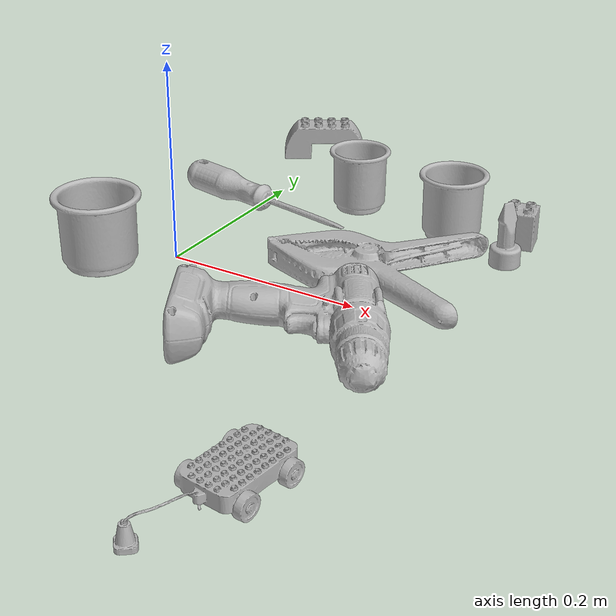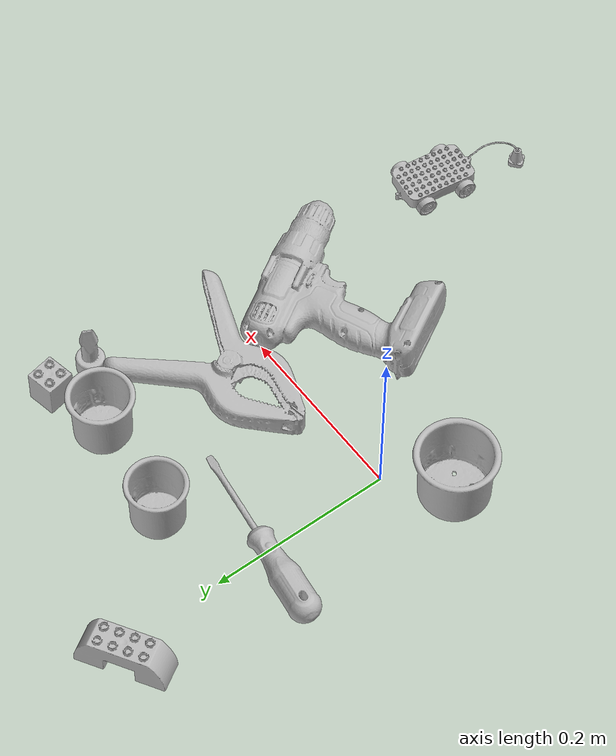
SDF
<sdf version="1.4">
  <world name="default">
    <light name="light1" type="point">
      <pose>0 0 1 0 0 0</pose>
      <diffuse>3 3 3 1</diffuse>
      <specular>3 3 3 1</specular>
    </light>
    <light name="light2" type="point">
      <pose>0 0.5 2 0 0 0</pose>
      <diffuse>1 1 1 1</diffuse>
      <specular>1 1 1 1</specular>
    </light>
    <light name="light3" type="point">
      <pose>0 0.5 2 0 0 0</pose>
      <diffuse>3 3 3 1</diffuse>
      <specular>3 3 3 1</specular>
    </light>
    <scene>
      <ambient>0.7 0.7 0.7</ambient>
    </scene>
    <model name="cup1">
      <link name="link_cup1">
        <collision name="default">
          <geometry>
            <mesh>
              <uri>model://d_cups/collision_meshes/collision.obj</uri>
              <scale>1.0 1.0 1.0</scale>
            </mesh>
          </geometry>
          <surface>
            <friction>
              <ode>
                <mu>0.5</mu>
                <mu2>0.5</mu2>
              </ode>
            </friction>
          <contact>
        <ode>
            <max_vel>0</max_vel>
            <min_depth>0.0001</min_depth>
            <kp>1e8</kp>
        </ode>
    </contact></surface>
        </collision>
        <visual name="default">
          <geometry>
            <mesh>
              <uri>model://d_cups/visual_meshes/visual.dae</uri>
              <scale>1.0 1.0 1.0</scale>
            </mesh>
          </geometry>
        </visual>
        <inertial>
          <mass>0.04943045228719711</mass>
          <pose>0.0008068052702583373 0.0019117395859211683 -0.0022666507866233587 0.2401104468273406 -0.24710716259907536 0.594298245500967</pose>
          <inertia>
            <ixx>4.1384912e-05</ixx>
            <iyy>4.1265153e-05</iyy>
            <izz>3.7460377e-05</izz>
            <ixy>0</ixy>
            <ixz>0</ixz>
            <iyz>0</iyz>
          </inertia>
        </inertial>
      </link>
      <pose>0.21129286289215088 0.18980543315410614 0.0346590131521225 1.4203080811360996e-07 5.8476342502225955e-08 0.5835024676876582</pose>
    </model>
    <model name="cup2">
      <link name="link_cup2">
        <collision name="default">
          <geometry>
            <mesh>
              <uri>model://c_cups/collision_meshes/collision.obj</uri>
              <scale>1.0 1.0 1.0</scale>
            </mesh>
          </geometry>
          <surface>
            <friction>
              <ode>
                <mu>0.5</mu>
                <mu2>0.5</mu2>
              </ode>
            </friction>
          <contact>
        <ode>
            <max_vel>0</max_vel>
            <min_depth>0.0001</min_depth>
            <kp>1e8</kp>
        </ode>
    </contact></surface>
        </collision>
        <visual name="default">
          <geometry>
            <mesh>
              <uri>model://c_cups/visual_meshes/visual.dae</uri>
              <scale>1.0 1.0 1.0</scale>
            </mesh>
          </geometry>
        </visual>
        <inertial>
          <mass>0.02161477506160736</mass>
          <pose>0.0007237254758365452 0.002015391131862998 -0.0012750980677083135 0.3021577101392444 0.013461522825774588 -0.08771822086046323</pose>
          <inertia>
            <ixx>1.607462e-05</ixx>
            <iyy>1.5790554e-05</iyy>
            <izz>1.4215883e-05</izz>
            <ixy>0</ixy>
            <ixz>0</ixz>
            <iyz>0</iyz>
          </inertia>
        </inertial>
      </link>
      <pose>0.09539611637592316 0.20388291776180267 0.03345899656414986 8.115835683773673e-07 9.494097895569186e-07 0.4854974228494874</pose>
    </model>
    <model name="cup3">
      <link name="link_cup3">
        <collision name="default">
          <geometry>
            <mesh>
              <uri>model://g_cups/collision_meshes/collision.obj</uri>
              <scale>1.0 1.0 1.0</scale>
            </mesh>
          </geometry>
          <surface>
            <friction>
              <ode>
                <mu>0.5</mu>
                <mu2>0.5</mu2>
              </ode>
            </friction>
          <contact>
        <ode>
            <max_vel>0</max_vel>
            <min_depth>0.0001</min_depth>
            <kp>1e8</kp>
        </ode>
    </contact></surface>
        </collision>
        <visual name="default">
          <geometry>
            <mesh>
              <uri>model://g_cups/visual_meshes/visual.dae</uri>
              <scale>1.0 1.0 1.0</scale>
            </mesh>
          </geometry>
        </visual>
        <inertial>
          <mass>0.04413851350545883</mass>
          <pose>-0.0007946275873109698 -4.206433004583232e-05 -0.002132937777787447 -0.2138199678327952 -0.31410615416341514 0.3111935262320568</pose>
          <inertia>
            <ixx>5.151955e-05</ixx>
            <iyy>5.1344283e-05</iyy>
            <izz>5.3365377e-05</izz>
            <ixy>0</ixy>
            <ixz>0</ixz>
            <iyz>0</iyz>
          </inertia>
        </inertial>
      </link>
      <pose>-0.0565386600792408 -0.048159968107938766 0.03720299154520035 -2.2745694703038818e-06 2.429124264391848e-06 0.13774075037844105</pose>
    </model>
    <model name="toy1">
      <link name="link_toy1">
        <collision name="default">
          <geometry>
            <mesh>
              <uri>model://e_lego_duplo/collision_meshes/collision.obj</uri>
              <scale>1.0 1.0 1.0</scale>
            </mesh>
          </geometry>
          <surface>
            <friction>
              <ode>
                <mu>0.5</mu>
                <mu2>0.5</mu2>
              </ode>
            </friction>
          <contact>
        <ode>
            <max_vel>0</max_vel>
            <min_depth>0.0001</min_depth>
            <kp>1e8</kp>
        </ode>
    </contact></surface>
        </collision>
        <visual name="default">
          <geometry>
            <mesh>
              <uri>model://e_lego_duplo/visual_meshes/visual.dae</uri>
              <scale>1.0 1.0 1.0</scale>
            </mesh>
          </geometry>
        </visual>
        <inertial>
          <mass>0.08806774020195007</mass>
          <pose>0.0003256051568314433 0.00023485405836254358 0.0019521453650668263 -0.02256777049150226 -6.824370740412915e-05 -0.00762515400873393</pose>
          <inertia>
            <ixx>1.8365032e-05</ixx>
            <iyy>7.537481e-05</iyy>
            <izz>7.3399904e-05</izz>
            <ixy>0</ixy>
            <ixz>0</ixz>
            <iyz>0</iyz>
          </inertia>
        </inertial>
      </link>
      <pose>-0.016224073246121407 0.32125982642173767 0.02180900052189827 2.514112142711278e-07 -7.978254710413086e-09 -2.5881572695488484</pose>
    </model>
    <model name="toy2">
      <link name="link_toy2">
        <collision name="default">
          <geometry>
            <mesh>
              <uri>model://b_lego_duplo/collision_meshes/collision.obj</uri>
              <scale>1.0 1.0 1.0</scale>
            </mesh>
          </geometry>
          <surface>
            <friction>
              <ode>
                <mu>0.5</mu>
                <mu2>0.5</mu2>
              </ode>
            </friction>
          <contact>
        <ode>
            <max_vel>0</max_vel>
            <min_depth>0.0001</min_depth>
            <kp>1e8</kp>
        </ode>
    </contact></surface>
        </collision>
        <visual name="default">
          <geometry>
            <mesh>
              <uri>model://b_lego_duplo/visual_meshes/visual.dae</uri>
              <scale>1.0 1.0 1.0</scale>
            </mesh>
          </geometry>
        </visual>
        <inertial>
          <mass>0.04734363779425621</mass>
          <pose>-0.00011053025809815153 -9.15254986466607e-06 0.0019294298253953457 -0.03749543151759021 -0.02635344242756168 0.4519151706388912</pose>
          <inertia>
            <ixx>9.689229e-06</ixx>
            <iyy>9.754364e-06</iyy>
            <izz>8.632791e-06</izz>
            <ixy>0</ixy>
            <ixz>0</ixz>
            <iyz>0</iyz>
          </inertia>
        </inertial>
      </link>
      <pose>0.2794003486633301 0.20594660937786102 0.02181500755250454 2.6166253740135086e-07 -2.2133192465054576e-07 1.7655281229135495</pose>
    </model>
    <model name="toy3">
      <link name="link_toy3">
        <collision name="default">
          <geometry>
            <mesh>
              <uri>model://g_lego_duplo/collision_meshes/collision.obj</uri>
              <scale>0.5 0.5 0.5</scale>
            </mesh>
          </geometry>
          <surface>
            <friction>
              <ode>
                <mu>0.5</mu>
                <mu2>0.5</mu2>
              </ode>
            </friction>
          <contact>
        <ode>
            <max_vel>0</max_vel>
            <min_depth>0.0001</min_depth>
            <kp>1e8</kp>
        </ode>
    </contact></surface>
        </collision>
        <visual name="default">
          <geometry>
            <mesh>
              <uri>model://g_lego_duplo/visual_meshes/visual.dae</uri>
              <scale>0.5 0.5 0.5</scale>
            </mesh>
          </geometry>
        </visual>
        <inertial>
          <mass>0.0549229197204113</mass>
          <pose>-0.02502383477985859 0.0008777315961197019 0.0019403378246352077 0.010963030367844774 0.03810824354215502 -0.09653013034360637</pose>
          <inertia>
            <ixx>1.989599e-05</ixx>
            <iyy>6.0152015e-05</iyy>
            <izz>7.525238e-05</izz>
            <ixy>0</ixy>
            <ixz>0</ixz>
            <iyz>0</iyz>
          </inertia>
        </inertial>
      </link>
      <pose>0.25290337204933167 -0.3014429211616516 0.014981148764491081 0.0016729609983415856 -0.00425076294734689 -1.7087918044091286</pose>
    </model>
    <model name="toy4">
      <link name="link_toy4">
        <collision name="default">
          <geometry>
            <mesh>
              <uri>model://e_toy_airplane/collision_meshes/collision.obj</uri>
              <scale>1.0 1.0 1.0</scale>
            </mesh>
          </geometry>
          <surface>
            <friction>
              <ode>
                <mu>0.5</mu>
                <mu2>0.5</mu2>
              </ode>
            </friction>
          <contact>
        <ode>
            <max_vel>0</max_vel>
            <min_depth>0.0001</min_depth>
            <kp>1e8</kp>
        </ode>
    </contact></surface>
        </collision>
        <visual name="default">
          <geometry>
            <mesh>
              <uri>model://e_toy_airplane/visual_meshes/visual.dae</uri>
              <scale>1.0 1.0 1.0</scale>
            </mesh>
          </geometry>
        </visual>
        <inertial>
          <mass>0.02949252724647522</mass>
          <pose>0.0001174047210952267 -2.248294731543865e-05 -0.011187205091118813 0.00551852159670192 0.009228270522190251 0.15041692690710914</pose>
          <inertia>
            <ixx>9.0014555e-06</ixx>
            <iyy>8.909378e-06</iyy>
            <izz>2.7052915e-06</izz>
            <ixy>0</ixy>
            <ixz>0</ixz>
            <iyz>0</iyz>
          </inertia>
        </inertial>
      </link>
      <pose>0.2845340073108673 0.15425632894039154 0.03321196511387825 4.763083187031899e-05 -0.00013170772454147665 2.5459176666248107</pose>
    </model>
    <model name="hardware1">
      <link name="link_hardware1">
        <collision name="default">
          <geometry>
            <mesh>
              <uri>model://power_drill/collision_meshes/collision.obj</uri>
              <scale>1.0 1.0 1.0</scale>
            </mesh>
          </geometry>
          <surface>
            <friction>
              <ode>
                <mu>0.5</mu>
                <mu2>0.5</mu2>
              </ode>
            </friction>
          <contact>
        <ode>
            <max_vel>0</max_vel>
            <min_depth>0.0001</min_depth>
            <kp>1e8</kp>
        </ode>
    </contact></surface>
        </collision>
        <visual name="default">
          <geometry>
            <mesh>
              <uri>model://power_drill/visual_meshes/visual.dae</uri>
              <scale>1.0 1.0 1.0</scale>
            </mesh>
          </geometry>
        </visual>
        <inertial>
          <mass>0.4622694253921509</mass>
          <pose>-0.014780544675886631 0.014369423501193523 0.0012414170196279883 0.0046091653592492164 0.00407302392026691 -0.1836269379856391</pose>
          <inertia>
            <ixx>0.0018837696</ixx>
            <iyy>0.00074116525</iyy>
            <izz>0.0024878501</izz>
            <ixy>0</ixy>
            <ixz>0</ixz>
            <iyz>0</iyz>
          </inertia>
        </inertial>
      </link>
      <pose>0.18510843813419342 -0.10330166667699814 0.027312440797686577 -0.030306022276981023 -0.047252770105227035 -1.0386292288428527</pose>
    </model>
    <model name="hardware2">
      <link name="link_hardware2">
        <collision name="default">
          <geometry>
            <mesh>
              <uri>model://flat_screwdriver/collision_meshes/collision.obj</uri>
              <scale>1.0 1.0 1.0</scale>
            </mesh>
          </geometry>
          <surface>
            <friction>
              <ode>
                <mu>0.5</mu>
                <mu2>0.5</mu2>
              </ode>
            </friction>
          <contact>
        <ode>
            <max_vel>0</max_vel>
            <min_depth>0.0001</min_depth>
            <kp>1e8</kp>
        </ode>
    </contact></surface>
        </collision>
        <visual name="default">
          <geometry>
            <mesh>
              <uri>model://flat_screwdriver/visual_meshes/visual.dae</uri>
              <scale>1.0 1.0 1.0</scale>
            </mesh>
          </geometry>
        </visual>
        <inertial>
          <mass>0.07028686255216599</mass>
          <pose>-0.0489187091588974 -0.0006576801533810794 -0.0006140916375443339 -0.5613212056153659 -0.0032337294395619258 0.006982277044942129</pose>
          <inertia>
            <ixx>8.3043415e-06</ixx>
            <iyy>0.00010542549</iyy>
            <izz>0.00010537667</izz>
            <ixy>0</ixy>
            <ixz>0</ixz>
            <iyz>0</iyz>
          </inertia>
        </inertial>
      </link>
      <pose>0.010936185717582703 0.14153358340263367 0.015338598750531673 -0.2144248695973808 0.04069535377385035 -0.15152106126742537</pose>
    </model>
    <model name="hardware3">
      <link name="link_hardware3">
        <collision name="default">
          <geometry>
            <mesh>
              <uri>model://extra_large_clamp/collision_meshes/collision.obj</uri>
              <scale>1.0 1.0 1.0</scale>
            </mesh>
          </geometry>
          <surface>
            <friction>
              <ode>
                <mu>0.5</mu>
                <mu2>0.5</mu2>
              </ode>
            </friction>
          <contact>
        <ode>
            <max_vel>0</max_vel>
            <min_depth>0.0001</min_depth>
            <kp>1e8</kp>
        </ode>
    </contact></surface>
        </collision>
        <visual name="default">
          <geometry>
            <mesh>
              <uri>model://extra_large_clamp/visual_meshes/visual.dae</uri>
              <scale>1.0 1.0 1.0</scale>
            </mesh>
          </geometry>
        </visual>
        <inertial>
          <mass>0.19051048159599304</mass>
          <pose>0.0032320222817361355 -7.615413051098585e-05 0.0003172157157678157 0.013786989477745152 -0.0005066809054022428 -0.0008935736893705532</pose>
          <inertia>
            <ixx>0.00028954487</ixx>
            <iyy>0.0004985067</iyy>
            <izz>0.0007616155</izz>
            <ixy>0</ixy>
            <ixz>0</ixz>
            <iyz>0</iyz>
          </inertia>
        </inertial>
      </link>
      <pose>0.1873822808265686 0.05123131349682808 0.018067801371216774 -0.024372721302246568 8.088436420642475e-05 -2.923477073984168</pose>
    </model>
  <physics type="ode">
      <max_contacts>50</max_contacts>
      <ode>
        <solver>
          <type>quick</type>
          <iters>75</iters>
        </solver>
        <constraints>
          <contact_max_correcting_vel>0</contact_max_correcting_vel>
          <contact_surface_layer>0</contact_surface_layer>
        </constraints>
      </ode>
    </physics></world>
</sdf>
